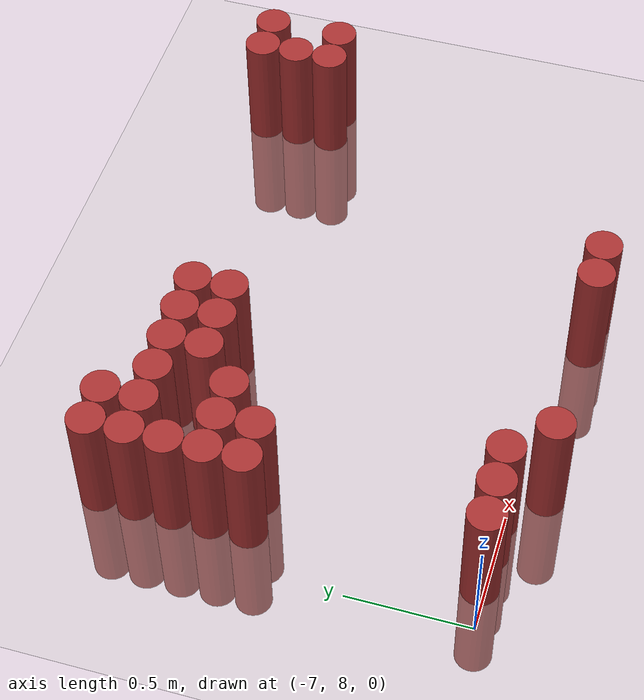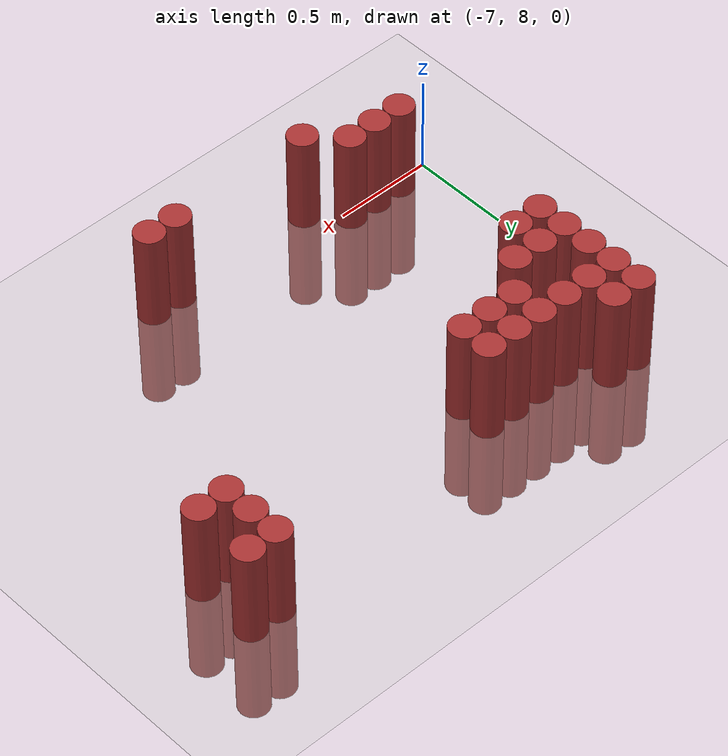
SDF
<sdf version="1.6">
 <world name="default">
  <model name="ground_plane">
   <static>1</static>
   <link name="link">
    <collision name="collision">
     <geometry><plane><normal>0 0 1</normal><size>100 100</size></plane></geometry>
     <surface><friction><ode><mu>100</mu><mu2>50</mu2></ode></friction></surface>
    </collision>
    <visual name="visual">
     <cast_shadows>0</cast_shadows>
     <geometry><plane><normal>0 0 1</normal><size>100 100</size></plane></geometry>
     <material>
      <script><uri>file://media/materials/scripts/gazebo.material</uri><name>Gazebo/Grey</name></script>
     </material>
    </visual>
   </link>
  </model>
  <model name="unit_cylinder_210">
   <static>1</static>
   <pose>-6.825000 8.025000 0.000000 0.000000 0.000000 0.000000</pose>
   <link name="link">
    <inertial>
     <mass>1</mass>
     <inertia><ixx>0.145833</ixx><ixy>0</ixy><ixz>0</ixz><iyy>0.145833</iyy><iyz>0</iyz><izz>0.125</izz></inertia>
    </inertial>
    <collision name="collision">
     <geometry><cylinder><radius>0.075000</radius><length>1</length></cylinder></geometry>
    </collision>
    <visual name="visual">
     <geometry><cylinder><radius>0.075000</radius><length>1</length></cylinder></geometry>
     <material>
      <ambient>0.648000 0.192000 0.192000 1</ambient>
      <diffuse>0.648000 0.192000 0.192000 1</diffuse>
     </material>
     <material>
      <script><name>Gazebo/Grey</name><uri>file://media/materials/scripts/gazebo.material</uri></script>
     </material>
    </visual>
   </link>
  </model>
  <model name="unit_cylinder_211">
   <static>1</static>
   <pose>-6.825000 8.925000 0.000000 0.000000 0.000000 0.000000</pose>
   <link name="link">
    <inertial>
     <mass>1</mass>
     <inertia><ixx>0.145833</ixx><ixy>0</ixy><ixz>0</ixz><iyy>0.145833</iyy><iyz>0</iyz><izz>0.125</izz></inertia>
    </inertial>
    <collision name="collision">
     <geometry><cylinder><radius>0.075000</radius><length>1</length></cylinder></geometry>
    </collision>
    <visual name="visual">
     <geometry><cylinder><radius>0.075000</radius><length>1</length></cylinder></geometry>
     <material>
      <ambient>0.648000 0.192000 0.192000 1</ambient>
      <diffuse>0.648000 0.192000 0.192000 1</diffuse>
     </material>
     <material>
      <script><name>Gazebo/Grey</name><uri>file://media/materials/scripts/gazebo.material</uri></script>
     </material>
    </visual>
   </link>
  </model>
  <model name="unit_cylinder_212">
   <static>1</static>
   <pose>-6.825000 9.075000 0.000000 0.000000 0.000000 0.000000</pose>
   <link name="link">
    <inertial>
     <mass>1</mass>
     <inertia><ixx>0.145833</ixx><ixy>0</ixy><ixz>0</ixz><iyy>0.145833</iyy><iyz>0</iyz><izz>0.125</izz></inertia>
    </inertial>
    <collision name="collision">
     <geometry><cylinder><radius>0.075000</radius><length>1</length></cylinder></geometry>
    </collision>
    <visual name="visual">
     <geometry><cylinder><radius>0.075000</radius><length>1</length></cylinder></geometry>
     <material>
      <ambient>0.648000 0.192000 0.192000 1</ambient>
      <diffuse>0.648000 0.192000 0.192000 1</diffuse>
     </material>
     <material>
      <script><name>Gazebo/Grey</name><uri>file://media/materials/scripts/gazebo.material</uri></script>
     </material>
    </visual>
   </link>
  </model>
  <model name="unit_cylinder_213">
   <static>1</static>
   <pose>-6.825000 9.225000 0.000000 0.000000 0.000000 0.000000</pose>
   <link name="link">
    <inertial>
     <mass>1</mass>
     <inertia><ixx>0.145833</ixx><ixy>0</ixy><ixz>0</ixz><iyy>0.145833</iyy><iyz>0</iyz><izz>0.125</izz></inertia>
    </inertial>
    <collision name="collision">
     <geometry><cylinder><radius>0.075000</radius><length>1</length></cylinder></geometry>
    </collision>
    <visual name="visual">
     <geometry><cylinder><radius>0.075000</radius><length>1</length></cylinder></geometry>
     <material>
      <ambient>0.648000 0.192000 0.192000 1</ambient>
      <diffuse>0.648000 0.192000 0.192000 1</diffuse>
     </material>
     <material>
      <script><name>Gazebo/Grey</name><uri>file://media/materials/scripts/gazebo.material</uri></script>
     </material>
    </visual>
   </link>
  </model>
  <model name="unit_cylinder_214">
   <static>1</static>
   <pose>-6.825000 9.375000 0.000000 0.000000 0.000000 0.000000</pose>
   <link name="link">
    <inertial>
     <mass>1</mass>
     <inertia><ixx>0.145833</ixx><ixy>0</ixy><ixz>0</ixz><iyy>0.145833</iyy><iyz>0</iyz><izz>0.125</izz></inertia>
    </inertial>
    <collision name="collision">
     <geometry><cylinder><radius>0.075000</radius><length>1</length></cylinder></geometry>
    </collision>
    <visual name="visual">
     <geometry><cylinder><radius>0.075000</radius><length>1</length></cylinder></geometry>
     <material>
      <ambient>0.648000 0.192000 0.192000 1</ambient>
      <diffuse>0.648000 0.192000 0.192000 1</diffuse>
     </material>
     <material>
      <script><name>Gazebo/Grey</name><uri>file://media/materials/scripts/gazebo.material</uri></script>
     </material>
    </visual>
   </link>
  </model>
  <model name="unit_cylinder_215">
   <static>1</static>
   <pose>-6.825000 9.525000 0.000000 0.000000 0.000000 0.000000</pose>
   <link name="link">
    <inertial>
     <mass>1</mass>
     <inertia><ixx>0.145833</ixx><ixy>0</ixy><ixz>0</ixz><iyy>0.145833</iyy><iyz>0</iyz><izz>0.125</izz></inertia>
    </inertial>
    <collision name="collision">
     <geometry><cylinder><radius>0.075000</radius><length>1</length></cylinder></geometry>
    </collision>
    <visual name="visual">
     <geometry><cylinder><radius>0.075000</radius><length>1</length></cylinder></geometry>
     <material>
      <ambient>0.648000 0.192000 0.192000 1</ambient>
      <diffuse>0.648000 0.192000 0.192000 1</diffuse>
     </material>
     <material>
      <script><name>Gazebo/Grey</name><uri>file://media/materials/scripts/gazebo.material</uri></script>
     </material>
    </visual>
   </link>
  </model>
  <model name="unit_cylinder_219">
   <static>1</static>
   <pose>-6.675000 8.025000 0.000000 0.000000 0.000000 0.000000</pose>
   <link name="link">
    <inertial>
     <mass>1</mass>
     <inertia><ixx>0.145833</ixx><ixy>0</ixy><ixz>0</ixz><iyy>0.145833</iyy><iyz>0</iyz><izz>0.125</izz></inertia>
    </inertial>
    <collision name="collision">
     <geometry><cylinder><radius>0.075000</radius><length>1</length></cylinder></geometry>
    </collision>
    <visual name="visual">
     <geometry><cylinder><radius>0.075000</radius><length>1</length></cylinder></geometry>
     <material>
      <ambient>0.648000 0.192000 0.192000 1</ambient>
      <diffuse>0.648000 0.192000 0.192000 1</diffuse>
     </material>
     <material>
      <script><name>Gazebo/Grey</name><uri>file://media/materials/scripts/gazebo.material</uri></script>
     </material>
    </visual>
   </link>
  </model>
  <model name="unit_cylinder_220">
   <static>1</static>
   <pose>-6.675000 8.925000 0.000000 0.000000 0.000000 0.000000</pose>
   <link name="link">
    <inertial>
     <mass>1</mass>
     <inertia><ixx>0.145833</ixx><ixy>0</ixy><ixz>0</ixz><iyy>0.145833</iyy><iyz>0</iyz><izz>0.125</izz></inertia>
    </inertial>
    <collision name="collision">
     <geometry><cylinder><radius>0.075000</radius><length>1</length></cylinder></geometry>
    </collision>
    <visual name="visual">
     <geometry><cylinder><radius>0.075000</radius><length>1</length></cylinder></geometry>
     <material>
      <ambient>0.648000 0.192000 0.192000 1</ambient>
      <diffuse>0.648000 0.192000 0.192000 1</diffuse>
     </material>
     <material>
      <script><name>Gazebo/Grey</name><uri>file://media/materials/scripts/gazebo.material</uri></script>
     </material>
    </visual>
   </link>
  </model>
  <model name="unit_cylinder_221">
   <static>1</static>
   <pose>-6.675000 9.075000 0.000000 0.000000 0.000000 0.000000</pose>
   <link name="link">
    <inertial>
     <mass>1</mass>
     <inertia><ixx>0.145833</ixx><ixy>0</ixy><ixz>0</ixz><iyy>0.145833</iyy><iyz>0</iyz><izz>0.125</izz></inertia>
    </inertial>
    <collision name="collision">
     <geometry><cylinder><radius>0.075000</radius><length>1</length></cylinder></geometry>
    </collision>
    <visual name="visual">
     <geometry><cylinder><radius>0.075000</radius><length>1</length></cylinder></geometry>
     <material>
      <ambient>0.648000 0.192000 0.192000 1</ambient>
      <diffuse>0.648000 0.192000 0.192000 1</diffuse>
     </material>
     <material>
      <script><name>Gazebo/Grey</name><uri>file://media/materials/scripts/gazebo.material</uri></script>
     </material>
    </visual>
   </link>
  </model>
  <model name="unit_cylinder_222">
   <static>1</static>
   <pose>-6.675000 9.375000 0.000000 0.000000 0.000000 0.000000</pose>
   <link name="link">
    <inertial>
     <mass>1</mass>
     <inertia><ixx>0.145833</ixx><ixy>0</ixy><ixz>0</ixz><iyy>0.145833</iyy><iyz>0</iyz><izz>0.125</izz></inertia>
    </inertial>
    <collision name="collision">
     <geometry><cylinder><radius>0.075000</radius><length>1</length></cylinder></geometry>
    </collision>
    <visual name="visual">
     <geometry><cylinder><radius>0.075000</radius><length>1</length></cylinder></geometry>
     <material>
      <ambient>0.648000 0.192000 0.192000 1</ambient>
      <diffuse>0.648000 0.192000 0.192000 1</diffuse>
     </material>
     <material>
      <script><name>Gazebo/Grey</name><uri>file://media/materials/scripts/gazebo.material</uri></script>
     </material>
    </visual>
   </link>
  </model>
  <model name="unit_cylinder_223">
   <static>1</static>
   <pose>-6.675000 9.525000 0.000000 0.000000 0.000000 0.000000</pose>
   <link name="link">
    <inertial>
     <mass>1</mass>
     <inertia><ixx>0.145833</ixx><ixy>0</ixy><ixz>0</ixz><iyy>0.145833</iyy><iyz>0</iyz><izz>0.125</izz></inertia>
    </inertial>
    <collision name="collision">
     <geometry><cylinder><radius>0.075000</radius><length>1</length></cylinder></geometry>
    </collision>
    <visual name="visual">
     <geometry><cylinder><radius>0.075000</radius><length>1</length></cylinder></geometry>
     <material>
      <ambient>0.648000 0.192000 0.192000 1</ambient>
      <diffuse>0.648000 0.192000 0.192000 1</diffuse>
     </material>
     <material>
      <script><name>Gazebo/Grey</name><uri>file://media/materials/scripts/gazebo.material</uri></script>
     </material>
    </visual>
   </link>
  </model>
  <model name="unit_cylinder_228">
   <static>1</static>
   <pose>-6.525000 8.025000 0.000000 0.000000 0.000000 0.000000</pose>
   <link name="link">
    <inertial>
     <mass>1</mass>
     <inertia><ixx>0.145833</ixx><ixy>0</ixy><ixz>0</ixz><iyy>0.145833</iyy><iyz>0</iyz><izz>0.125</izz></inertia>
    </inertial>
    <collision name="collision">
     <geometry><cylinder><radius>0.075000</radius><length>1</length></cylinder></geometry>
    </collision>
    <visual name="visual">
     <geometry><cylinder><radius>0.075000</radius><length>1</length></cylinder></geometry>
     <material>
      <ambient>0.648000 0.192000 0.192000 1</ambient>
      <diffuse>0.648000 0.192000 0.192000 1</diffuse>
     </material>
     <material>
      <script><name>Gazebo/Grey</name><uri>file://media/materials/scripts/gazebo.material</uri></script>
     </material>
    </visual>
   </link>
  </model>
  <model name="unit_cylinder_229">
   <static>1</static>
   <pose>-6.525000 9.075000 0.000000 0.000000 0.000000 0.000000</pose>
   <link name="link">
    <inertial>
     <mass>1</mass>
     <inertia><ixx>0.145833</ixx><ixy>0</ixy><ixz>0</ixz><iyy>0.145833</iyy><iyz>0</iyz><izz>0.125</izz></inertia>
    </inertial>
    <collision name="collision">
     <geometry><cylinder><radius>0.075000</radius><length>1</length></cylinder></geometry>
    </collision>
    <visual name="visual">
     <geometry><cylinder><radius>0.075000</radius><length>1</length></cylinder></geometry>
     <material>
      <ambient>0.648000 0.192000 0.192000 1</ambient>
      <diffuse>0.648000 0.192000 0.192000 1</diffuse>
     </material>
     <material>
      <script><name>Gazebo/Grey</name><uri>file://media/materials/scripts/gazebo.material</uri></script>
     </material>
    </visual>
   </link>
  </model>
  <model name="unit_cylinder_230">
   <static>1</static>
   <pose>-6.525000 9.375000 0.000000 0.000000 0.000000 0.000000</pose>
   <link name="link">
    <inertial>
     <mass>1</mass>
     <inertia><ixx>0.145833</ixx><ixy>0</ixy><ixz>0</ixz><iyy>0.145833</iyy><iyz>0</iyz><izz>0.125</izz></inertia>
    </inertial>
    <collision name="collision">
     <geometry><cylinder><radius>0.075000</radius><length>1</length></cylinder></geometry>
    </collision>
    <visual name="visual">
     <geometry><cylinder><radius>0.075000</radius><length>1</length></cylinder></geometry>
     <material>
      <ambient>0.648000 0.192000 0.192000 1</ambient>
      <diffuse>0.648000 0.192000 0.192000 1</diffuse>
     </material>
     <material>
      <script><name>Gazebo/Grey</name><uri>file://media/materials/scripts/gazebo.material</uri></script>
     </material>
    </visual>
   </link>
  </model>
  <model name="unit_cylinder_236">
   <static>1</static>
   <pose>-6.375000 7.875000 0.000000 0.000000 0.000000 0.000000</pose>
   <link name="link">
    <inertial>
     <mass>1</mass>
     <inertia><ixx>0.145833</ixx><ixy>0</ixy><ixz>0</ixz><iyy>0.145833</iyy><iyz>0</iyz><izz>0.125</izz></inertia>
    </inertial>
    <collision name="collision">
     <geometry><cylinder><radius>0.075000</radius><length>1</length></cylinder></geometry>
    </collision>
    <visual name="visual">
     <geometry><cylinder><radius>0.075000</radius><length>1</length></cylinder></geometry>
     <material>
      <ambient>0.648000 0.192000 0.192000 1</ambient>
      <diffuse>0.648000 0.192000 0.192000 1</diffuse>
     </material>
     <material>
      <script><name>Gazebo/Grey</name><uri>file://media/materials/scripts/gazebo.material</uri></script>
     </material>
    </visual>
   </link>
  </model>
  <model name="unit_cylinder_237">
   <static>1</static>
   <pose>-6.375000 9.225000 0.000000 0.000000 0.000000 0.000000</pose>
   <link name="link">
    <inertial>
     <mass>1</mass>
     <inertia><ixx>0.145833</ixx><ixy>0</ixy><ixz>0</ixz><iyy>0.145833</iyy><iyz>0</iyz><izz>0.125</izz></inertia>
    </inertial>
    <collision name="collision">
     <geometry><cylinder><radius>0.075000</radius><length>1</length></cylinder></geometry>
    </collision>
    <visual name="visual">
     <geometry><cylinder><radius>0.075000</radius><length>1</length></cylinder></geometry>
     <material>
      <ambient>0.648000 0.192000 0.192000 1</ambient>
      <diffuse>0.648000 0.192000 0.192000 1</diffuse>
     </material>
     <material>
      <script><name>Gazebo/Grey</name><uri>file://media/materials/scripts/gazebo.material</uri></script>
     </material>
    </visual>
   </link>
  </model>
  <model name="unit_cylinder_238">
   <static>1</static>
   <pose>-6.375000 9.375000 0.000000 0.000000 0.000000 0.000000</pose>
   <link name="link">
    <inertial>
     <mass>1</mass>
     <inertia><ixx>0.145833</ixx><ixy>0</ixy><ixz>0</ixz><iyy>0.145833</iyy><iyz>0</iyz><izz>0.125</izz></inertia>
    </inertial>
    <collision name="collision">
     <geometry><cylinder><radius>0.075000</radius><length>1</length></cylinder></geometry>
    </collision>
    <visual name="visual">
     <geometry><cylinder><radius>0.075000</radius><length>1</length></cylinder></geometry>
     <material>
      <ambient>0.648000 0.192000 0.192000 1</ambient>
      <diffuse>0.648000 0.192000 0.192000 1</diffuse>
     </material>
     <material>
      <script><name>Gazebo/Grey</name><uri>file://media/materials/scripts/gazebo.material</uri></script>
     </material>
    </visual>
   </link>
  </model>
  <model name="unit_cylinder_244">
   <static>1</static>
   <pose>-6.225000 9.225000 0.000000 0.000000 0.000000 0.000000</pose>
   <link name="link">
    <inertial>
     <mass>1</mass>
     <inertia><ixx>0.145833</ixx><ixy>0</ixy><ixz>0</ixz><iyy>0.145833</iyy><iyz>0</iyz><izz>0.125</izz></inertia>
    </inertial>
    <collision name="collision">
     <geometry><cylinder><radius>0.075000</radius><length>1</length></cylinder></geometry>
    </collision>
    <visual name="visual">
     <geometry><cylinder><radius>0.075000</radius><length>1</length></cylinder></geometry>
     <material>
      <ambient>0.648000 0.192000 0.192000 1</ambient>
      <diffuse>0.648000 0.192000 0.192000 1</diffuse>
     </material>
     <material>
      <script><name>Gazebo/Grey</name><uri>file://media/materials/scripts/gazebo.material</uri></script>
     </material>
    </visual>
   </link>
  </model>
  <model name="unit_cylinder_245">
   <static>1</static>
   <pose>-6.225000 9.375000 0.000000 0.000000 0.000000 0.000000</pose>
   <link name="link">
    <inertial>
     <mass>1</mass>
     <inertia><ixx>0.145833</ixx><ixy>0</ixy><ixz>0</ixz><iyy>0.145833</iyy><iyz>0</iyz><izz>0.125</izz></inertia>
    </inertial>
    <collision name="collision">
     <geometry><cylinder><radius>0.075000</radius><length>1</length></cylinder></geometry>
    </collision>
    <visual name="visual">
     <geometry><cylinder><radius>0.075000</radius><length>1</length></cylinder></geometry>
     <material>
      <ambient>0.648000 0.192000 0.192000 1</ambient>
      <diffuse>0.648000 0.192000 0.192000 1</diffuse>
     </material>
     <material>
      <script><name>Gazebo/Grey</name><uri>file://media/materials/scripts/gazebo.material</uri></script>
     </material>
    </visual>
   </link>
  </model>
  <model name="unit_cylinder_248">
   <static>1</static>
   <pose>-6.075000 9.225000 0.000000 0.000000 0.000000 0.000000</pose>
   <link name="link">
    <inertial>
     <mass>1</mass>
     <inertia><ixx>0.145833</ixx><ixy>0</ixy><ixz>0</ixz><iyy>0.145833</iyy><iyz>0</iyz><izz>0.125</izz></inertia>
    </inertial>
    <collision name="collision">
     <geometry><cylinder><radius>0.075000</radius><length>1</length></cylinder></geometry>
    </collision>
    <visual name="visual">
     <geometry><cylinder><radius>0.075000</radius><length>1</length></cylinder></geometry>
     <material>
      <ambient>0.648000 0.192000 0.192000 1</ambient>
      <diffuse>0.648000 0.192000 0.192000 1</diffuse>
     </material>
     <material>
      <script><name>Gazebo/Grey</name><uri>file://media/materials/scripts/gazebo.material</uri></script>
     </material>
    </visual>
   </link>
  </model>
  <model name="unit_cylinder_249">
   <static>1</static>
   <pose>-6.075000 9.375000 0.000000 0.000000 0.000000 0.000000</pose>
   <link name="link">
    <inertial>
     <mass>1</mass>
     <inertia><ixx>0.145833</ixx><ixy>0</ixy><ixz>0</ixz><iyy>0.145833</iyy><iyz>0</iyz><izz>0.125</izz></inertia>
    </inertial>
    <collision name="collision">
     <geometry><cylinder><radius>0.075000</radius><length>1</length></cylinder></geometry>
    </collision>
    <visual name="visual">
     <geometry><cylinder><radius>0.075000</radius><length>1</length></cylinder></geometry>
     <material>
      <ambient>0.648000 0.192000 0.192000 1</ambient>
      <diffuse>0.648000 0.192000 0.192000 1</diffuse>
     </material>
     <material>
      <script><name>Gazebo/Grey</name><uri>file://media/materials/scripts/gazebo.material</uri></script>
     </material>
    </visual>
   </link>
  </model>
  <model name="unit_cylinder_261">
   <static>1</static>
   <pose>-5.625000 7.875000 0.000000 0.000000 0.000000 0.000000</pose>
   <link name="link">
    <inertial>
     <mass>1</mass>
     <inertia><ixx>0.145833</ixx><ixy>0</ixy><ixz>0</ixz><iyy>0.145833</iyy><iyz>0</iyz><izz>0.125</izz></inertia>
    </inertial>
    <collision name="collision">
     <geometry><cylinder><radius>0.075000</radius><length>1</length></cylinder></geometry>
    </collision>
    <visual name="visual">
     <geometry><cylinder><radius>0.075000</radius><length>1</length></cylinder></geometry>
     <material>
      <ambient>0.648000 0.192000 0.192000 1</ambient>
      <diffuse>0.648000 0.192000 0.192000 1</diffuse>
     </material>
     <material>
      <script><name>Gazebo/Grey</name><uri>file://media/materials/scripts/gazebo.material</uri></script>
     </material>
    </visual>
   </link>
  </model>
  <model name="unit_cylinder_266">
   <static>1</static>
   <pose>-5.475000 7.875000 0.000000 0.000000 0.000000 0.000000</pose>
   <link name="link">
    <inertial>
     <mass>1</mass>
     <inertia><ixx>0.145833</ixx><ixy>0</ixy><ixz>0</ixz><iyy>0.145833</iyy><iyz>0</iyz><izz>0.125</izz></inertia>
    </inertial>
    <collision name="collision">
     <geometry><cylinder><radius>0.075000</radius><length>1</length></cylinder></geometry>
    </collision>
    <visual name="visual">
     <geometry><cylinder><radius>0.075000</radius><length>1</length></cylinder></geometry>
     <material>
      <ambient>0.648000 0.192000 0.192000 1</ambient>
      <diffuse>0.648000 0.192000 0.192000 1</diffuse>
     </material>
     <material>
      <script><name>Gazebo/Grey</name><uri>file://media/materials/scripts/gazebo.material</uri></script>
     </material>
    </visual>
   </link>
  </model>
  <model name="unit_cylinder_268">
   <static>1</static>
   <pose>-4.725000 9.225000 0.000000 0.000000 0.000000 0.000000</pose>
   <link name="link">
    <inertial>
     <mass>1</mass>
     <inertia><ixx>0.145833</ixx><ixy>0</ixy><ixz>0</ixz><iyy>0.145833</iyy><iyz>0</iyz><izz>0.125</izz></inertia>
    </inertial>
    <collision name="collision">
     <geometry><cylinder><radius>0.075000</radius><length>1</length></cylinder></geometry>
    </collision>
    <visual name="visual">
     <geometry><cylinder><radius>0.075000</radius><length>1</length></cylinder></geometry>
     <material>
      <ambient>0.648000 0.192000 0.192000 1</ambient>
      <diffuse>0.648000 0.192000 0.192000 1</diffuse>
     </material>
     <material>
      <script><name>Gazebo/Grey</name><uri>file://media/materials/scripts/gazebo.material</uri></script>
     </material>
    </visual>
   </link>
  </model>
  <model name="unit_cylinder_269">
   <static>1</static>
   <pose>-4.725000 9.375000 0.000000 0.000000 0.000000 0.000000</pose>
   <link name="link">
    <inertial>
     <mass>1</mass>
     <inertia><ixx>0.145833</ixx><ixy>0</ixy><ixz>0</ixz><iyy>0.145833</iyy><iyz>0</iyz><izz>0.125</izz></inertia>
    </inertial>
    <collision name="collision">
     <geometry><cylinder><radius>0.075000</radius><length>1</length></cylinder></geometry>
    </collision>
    <visual name="visual">
     <geometry><cylinder><radius>0.075000</radius><length>1</length></cylinder></geometry>
     <material>
      <ambient>0.648000 0.192000 0.192000 1</ambient>
      <diffuse>0.648000 0.192000 0.192000 1</diffuse>
     </material>
     <material>
      <script><name>Gazebo/Grey</name><uri>file://media/materials/scripts/gazebo.material</uri></script>
     </material>
    </visual>
   </link>
  </model>
  <model name="unit_cylinder_270">
   <static>1</static>
   <pose>-4.725000 9.525000 0.000000 0.000000 0.000000 0.000000</pose>
   <link name="link">
    <inertial>
     <mass>1</mass>
     <inertia><ixx>0.145833</ixx><ixy>0</ixy><ixz>0</ixz><iyy>0.145833</iyy><iyz>0</iyz><izz>0.125</izz></inertia>
    </inertial>
    <collision name="collision">
     <geometry><cylinder><radius>0.075000</radius><length>1</length></cylinder></geometry>
    </collision>
    <visual name="visual">
     <geometry><cylinder><radius>0.075000</radius><length>1</length></cylinder></geometry>
     <material>
      <ambient>0.648000 0.192000 0.192000 1</ambient>
      <diffuse>0.648000 0.192000 0.192000 1</diffuse>
     </material>
     <material>
      <script><name>Gazebo/Grey</name><uri>file://media/materials/scripts/gazebo.material</uri></script>
     </material>
    </visual>
   </link>
  </model>
  <model name="unit_cylinder_275">
   <static>1</static>
   <pose>-4.575000 9.225000 0.000000 0.000000 0.000000 0.000000</pose>
   <link name="link">
    <inertial>
     <mass>1</mass>
     <inertia><ixx>0.145833</ixx><ixy>0</ixy><ixz>0</ixz><iyy>0.145833</iyy><iyz>0</iyz><izz>0.125</izz></inertia>
    </inertial>
    <collision name="collision">
     <geometry><cylinder><radius>0.075000</radius><length>1</length></cylinder></geometry>
    </collision>
    <visual name="visual">
     <geometry><cylinder><radius>0.075000</radius><length>1</length></cylinder></geometry>
     <material>
      <ambient>0.648000 0.192000 0.192000 1</ambient>
      <diffuse>0.648000 0.192000 0.192000 1</diffuse>
     </material>
     <material>
      <script><name>Gazebo/Grey</name><uri>file://media/materials/scripts/gazebo.material</uri></script>
     </material>
    </visual>
   </link>
  </model>
  <model name="unit_cylinder_276">
   <static>1</static>
   <pose>-4.575000 9.525000 0.000000 0.000000 0.000000 0.000000</pose>
   <link name="link">
    <inertial>
     <mass>1</mass>
     <inertia><ixx>0.145833</ixx><ixy>0</ixy><ixz>0</ixz><iyy>0.145833</iyy><iyz>0</iyz><izz>0.125</izz></inertia>
    </inertial>
    <collision name="collision">
     <geometry><cylinder><radius>0.075000</radius><length>1</length></cylinder></geometry>
    </collision>
    <visual name="visual">
     <geometry><cylinder><radius>0.075000</radius><length>1</length></cylinder></geometry>
     <material>
      <ambient>0.648000 0.192000 0.192000 1</ambient>
      <diffuse>0.648000 0.192000 0.192000 1</diffuse>
     </material>
     <material>
      <script><name>Gazebo/Grey</name><uri>file://media/materials/scripts/gazebo.material</uri></script>
     </material>
    </visual>
   </link>
  </model>
 </world>
</sdf>
